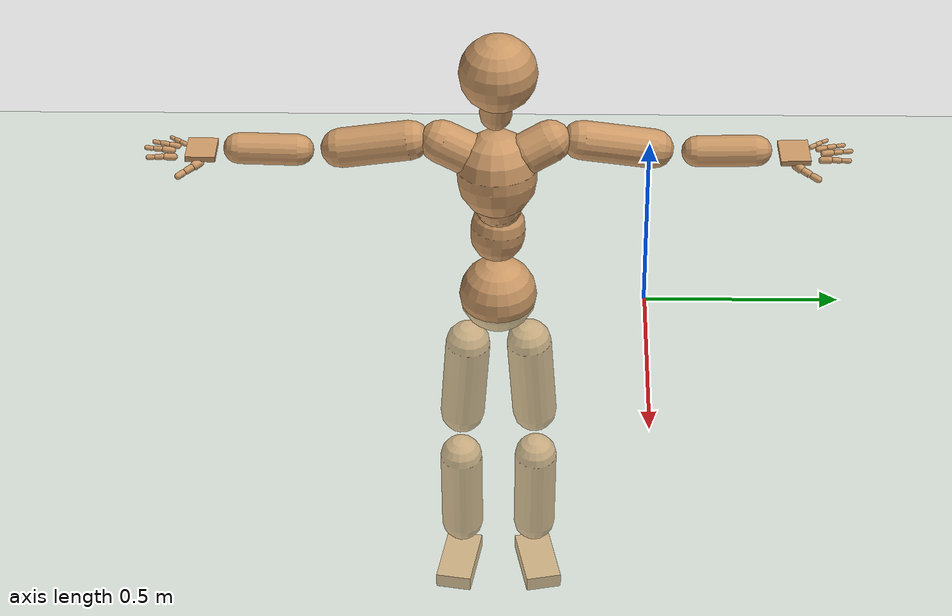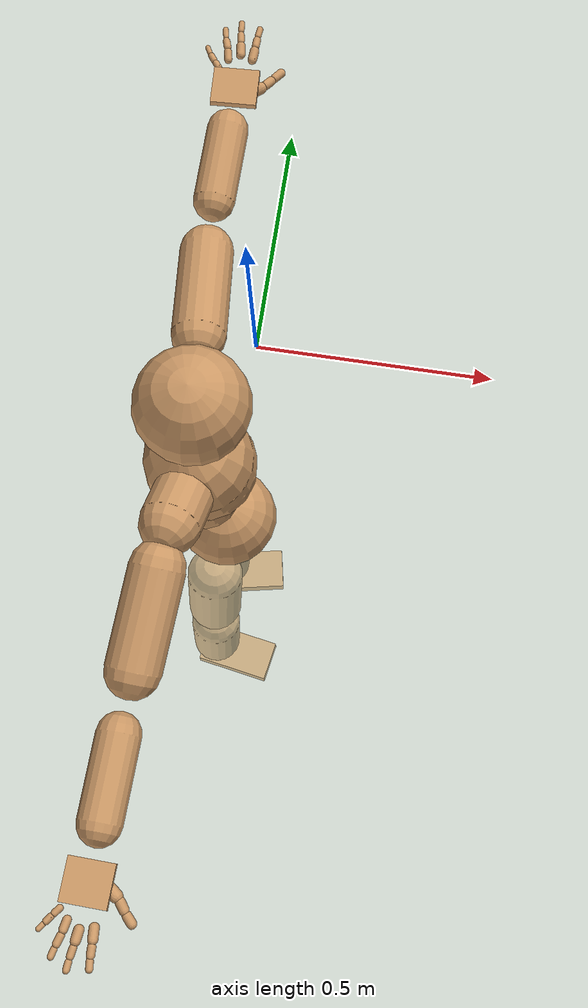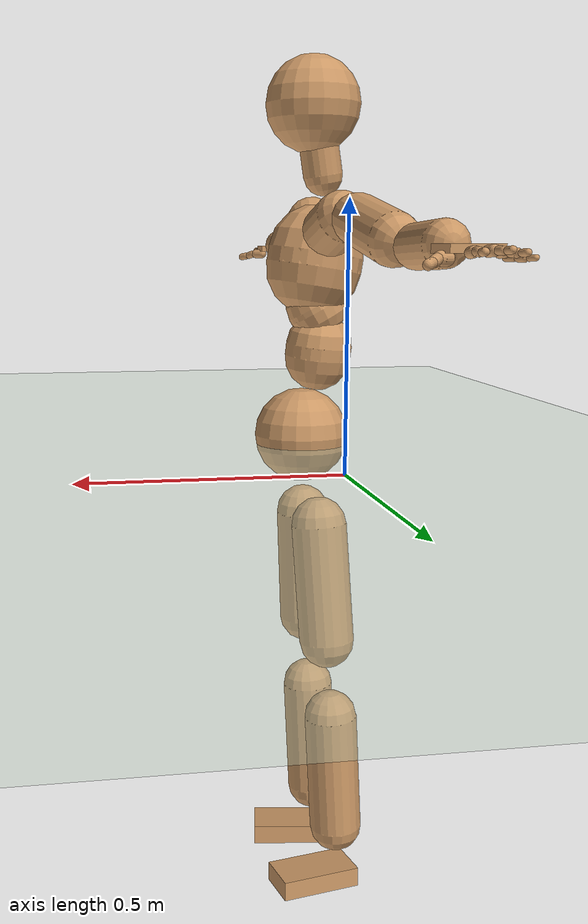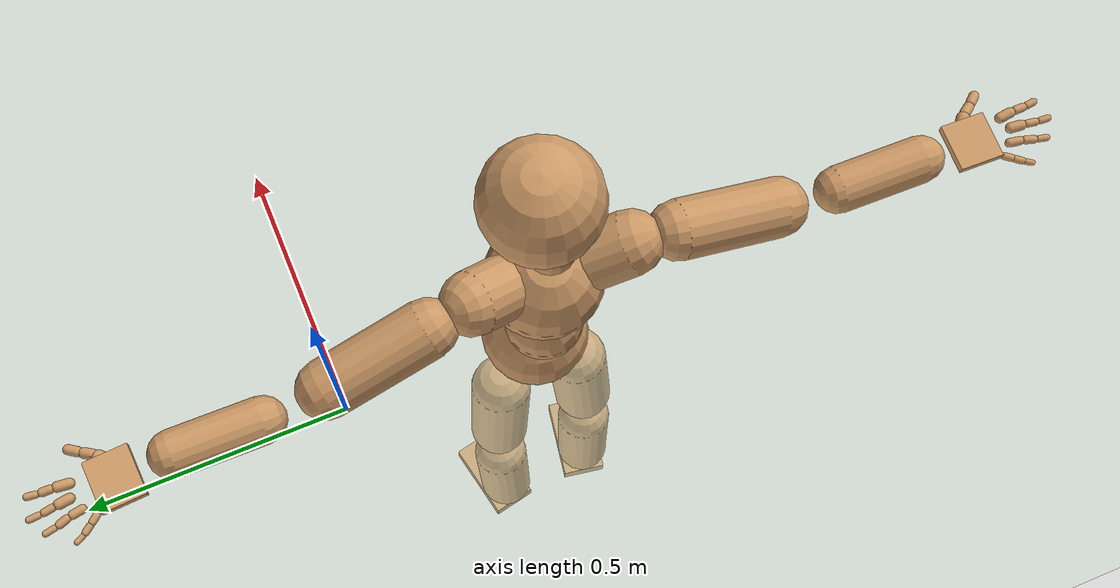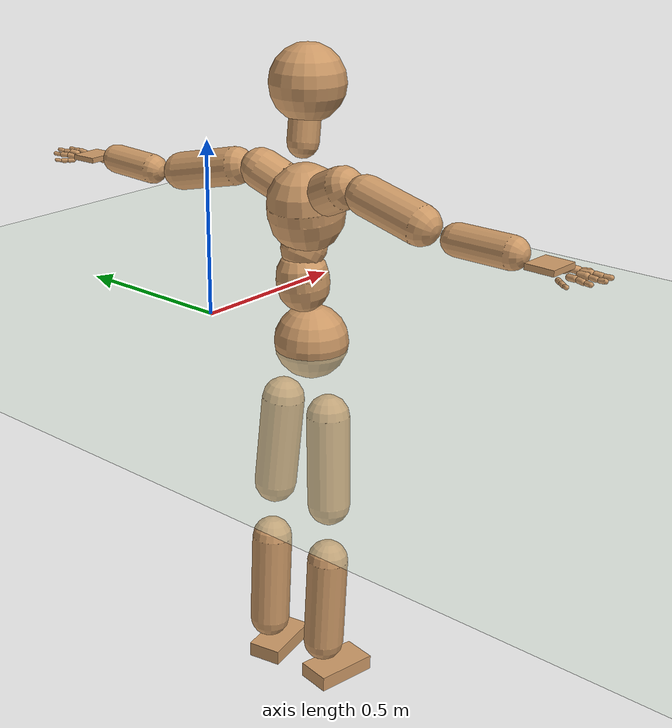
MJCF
<mujoco model="humanoid">
  <compiler coordinate="local" angle="radian"/>
  <default>
    <joint damping="0.0" armature="0.01" stiffness="0.0" limited="true"/>
    <geom conaffinity="1" condim="3" contype="7" margin="0.001" rgba="0.8 0.6 .4 1"/>
  </default>
  <asset>
    <texture type="skybox" builtin="gradient" rgb1=".4 .5 .6" rgb2="0 0 0" width="100" height="100"/>
    <texture builtin="flat" height="1278" mark="cross" markrgb="1 1 1" name="texgeom" random="0.01" rgb1="0.8 0.6 0.4" rgb2="0.8 0.6 0.4" type="cube" width="127"/>
    <texture builtin="checker" height="100" name="texplane" rgb1="0 0 0" rgb2="0.8 0.8 0.8" type="2d" width="100"/>
    <material name="MatPlane" reflectance="0.5" shininess="1" specular="1" texrepeat="60 60" texture="texplane"/>
    <material name="geom" texture="texgeom" texuniform="true"/>
  </asset>
  <worldbody>
    <light cutoff="100" diffuse="1 1 1" dir="-0 0 -1.3" directional="true" exponent="1" pos="0 0 1.3" specular=".1 .1 .1"/>
    <geom conaffinity="1" condim="3" name="floor" pos="0 0 0" rgba="0.8 0.9 0.8 1" size="100 100 .2" type="plane" material="MatPlane"/>
    <body name="Pelvis" pos="0.0004 -0.3781 0.017">
      <freejoint name="Pelvis"/>
      <geom type="sphere" contype="1" conaffinity="1" density="500" size="0.1006" pos="0.0000 0.0000 0.0000" name="Pelvis"/>
      <body name="L_Hip" pos="-0.0177 0.0754 -0.0968">
        <joint name="L_Hip_x" type="hinge" pos="0 0 0" axis="1 0 0" stiffness="800" damping="80" armature="0.02" range="-180.0000 180.0000"/>
        <joint name="L_Hip_y" type="hinge" pos="0 0 0" axis="0 1 0" stiffness="800" damping="80" armature="0.02" range="-180.0000 180.0000"/>
        <joint name="L_Hip_z" type="hinge" pos="0 0 0" axis="0 0 1" stiffness="800" damping="80" armature="0.02" range="-180.0000 180.0000"/>
        <geom type="capsule" contype="1" conaffinity="1" density="500" fromto="-0.0055 0.0051 -0.0858 -0.0220 0.0206 -0.3432" size="0.0588" name="L_Hip"/>
        <body name="L_Knee" pos="-0.0275 0.0257 -0.429">
          <joint name="L_Knee_x" type="hinge" pos="0 0 0" axis="1 0 0" stiffness="800" damping="80" armature="0.02" range="-180.0000 180.0000"/>
          <joint name="L_Knee_y" type="hinge" pos="0 0 0" axis="0 1 0" stiffness="800" damping="80" armature="0.02" range="-180.0000 180.0000"/>
          <joint name="L_Knee_z" type="hinge" pos="0 0 0" axis="0 0 1" stiffness="800" damping="80" armature="0.02" range="-180.0000 180.0000"/>
          <geom type="capsule" contype="1" conaffinity="1" density="500" fromto="-0.0052 -0.0012 -0.0879 -0.0209 -0.0046 -0.3517" size="0.0568" name="L_Knee"/>
          <body name="L_Ankle" pos="-0.0261 -0.0058 -0.4396">
            <joint name="L_Ankle_x" type="hinge" pos="0 0 0" axis="1 0 0" stiffness="800" damping="80" armature="0.02" range="-180.0000 180.0000"/>
            <joint name="L_Ankle_y" type="hinge" pos="0 0 0" axis="0 1 0" stiffness="800" damping="80" armature="0.02" range="-180.0000 180.0000"/>
            <joint name="L_Ankle_z" type="hinge" pos="0 0 0" axis="0 0 1" stiffness="800" damping="80" armature="0.02" range="-180.0000 180.0000"/>
            <geom type="box" contype="1" conaffinity="1" density="500" pos="0.0573 0.0115 -0.0243" size="0.0887 0.0479 0.0214" quat="0.9951 0.0000 0.0000 0.0989" name="L_Ankle"/>
            <body name="L_Toe" pos="0.1146 0.023 -0.0485">
              <joint name="L_Toe_x" type="hinge" pos="0 0 0" axis="1 0 0" stiffness="500" damping="50" armature="0.02" range="-180.0000 180.0000"/>
              <joint name="L_Toe_y" type="hinge" pos="0 0 0" axis="0 1 0" stiffness="500" damping="50" armature="0.02" range="-180.0000 180.0000"/>
              <joint name="L_Toe_z" type="hinge" pos="0 0 0" axis="0 0 1" stiffness="500" damping="50" armature="0.02" range="-180.0000 180.0000"/>
              <geom type="box" contype="1" conaffinity="1" density="500" pos="0.0000 0.0000 0.0238" size="0.0009 0.0023 0.001" quat="0.9944 0.0000 0.0000 0.1054" name="L_Toe"/>
            </body>
          </body>
        </body>
      </body>
      <body name="R_Hip" pos="-0.019 -0.0747 -0.1036">
        <joint name="R_Hip_x" type="hinge" pos="0 0 0" axis="1 0 0" stiffness="800" damping="80" armature="0.02" range="-180.0000 180.0000"/>
        <joint name="R_Hip_y" type="hinge" pos="0 0 0" axis="0 1 0" stiffness="800" damping="80" armature="0.02" range="-180.0000 180.0000"/>
        <joint name="R_Hip_z" type="hinge" pos="0 0 0" axis="0 0 1" stiffness="800" damping="80" armature="0.02" range="-180.0000 180.0000"/>
        <geom type="capsule" contype="1" conaffinity="1" density="500" fromto="-0.0043 -0.0059 -0.0850 -0.0171 -0.0234 -0.3398" size="0.0586" name="R_Hip"/>
        <body name="R_Knee" pos="-0.0213 -0.0293 -0.4248">
          <joint name="R_Knee_x" type="hinge" pos="0 0 0" axis="1 0 0" stiffness="800" damping="80" armature="0.02" range="-180.0000 180.0000"/>
          <joint name="R_Knee_y" type="hinge" pos="0 0 0" axis="0 1 0" stiffness="800" damping="80" armature="0.02" range="-180.0000 180.0000"/>
          <joint name="R_Knee_z" type="hinge" pos="0 0 0" axis="0 0 1" stiffness="800" damping="80" armature="0.02" range="-180.0000 180.0000"/>
          <geom type="capsule" contype="1" conaffinity="1" density="500" fromto="-0.0045 0.0002 -0.0861 -0.0179 0.0007 -0.3444" size="0.0568" name="R_Knee"/>
          <body name="R_Ankle" pos="-0.0224 0.0009 -0.4305">
            <joint name="R_Ankle_x" type="hinge" pos="0 0 0" axis="1 0 0" stiffness="800" damping="80" armature="0.02" range="-180.0000 180.0000"/>
            <joint name="R_Ankle_y" type="hinge" pos="0 0 0" axis="0 1 0" stiffness="800" damping="80" armature="0.02" range="-180.0000 180.0000"/>
            <joint name="R_Ankle_z" type="hinge" pos="0 0 0" axis="0 0 1" stiffness="800" damping="80" armature="0.02" range="-180.0000 180.0000"/>
            <geom type="box" contype="1" conaffinity="1" density="500" pos="0.0541 -0.0093 -0.0261" size="0.0887 0.0479 0.0215" quat="0.9964 0.0000 0.0000 -0.0849" name="R_Ankle"/>
            <body name="R_Toe" pos="0.1082 -0.0186 -0.0522">
              <joint name="R_Toe_x" type="hinge" pos="0 0 0" axis="1 0 0" stiffness="500" damping="50" armature="0.02" range="-180.0000 180.0000"/>
              <joint name="R_Toe_y" type="hinge" pos="0 0 0" axis="0 1 0" stiffness="500" damping="50" armature="0.02" range="-180.0000 180.0000"/>
              <joint name="R_Toe_z" type="hinge" pos="0 0 0" axis="0 0 1" stiffness="500" damping="50" armature="0.02" range="-180.0000 180.0000"/>
              <geom type="box" contype="1" conaffinity="1" density="500" pos="0.0000 0.0000 0.0257" size="0.0009 0.0023 0.001" quat="0.9972 0.0000 0.0000 -0.0745" name="R_Toe"/>
            </body>
          </body>
        </body>
      </body>
      <body name="Torso" pos="-0.0302 -0.0055 0.1131">
        <joint name="Torso_x" type="hinge" pos="0 0 0" axis="1 0 0" stiffness="1000" damping="100" armature="0.02" range="-180.0000 180.0000"/>
        <joint name="Torso_y" type="hinge" pos="0 0 0" axis="0 1 0" stiffness="1000" damping="100" armature="0.02" range="-180.0000 180.0000"/>
        <joint name="Torso_z" type="hinge" pos="0 0 0" axis="0 0 1" stiffness="1000" damping="100" armature="0.02" range="-180.0000 180.0000"/>
        <geom type="capsule" contype="1" conaffinity="1" density="500" fromto="-0.0071 0.0060 0.0790 -0.0047 0.0040 0.0527" size="0.0702" name="Torso"/>
        <body name="Spine" pos="-0.0118 0.01 0.1317">
          <joint name="Spine_x" type="hinge" pos="0 0 0" axis="1 0 0" stiffness="1000" damping="100" armature="0.02" range="-180.0000 180.0000"/>
          <joint name="Spine_y" type="hinge" pos="0 0 0" axis="0 1 0" stiffness="1000" damping="100" armature="0.02" range="-180.0000 180.0000"/>
          <joint name="Spine_z" type="hinge" pos="0 0 0" axis="0 0 1" stiffness="1000" damping="100" armature="0.02" range="-180.0000 180.0000"/>
          <geom type="capsule" contype="1" conaffinity="1" density="500" fromto="0.0165 -0.0030 0.0298 0.0110 -0.0020 0.0199" size="0.0607" name="Spine"/>
          <body name="Chest" pos="0.0274 -0.0051 0.0497">
            <joint name="Chest_x" type="hinge" pos="0 0 0" axis="1 0 0" stiffness="1000" damping="100" armature="0.02" range="-180.0000 180.0000"/>
            <joint name="Chest_y" type="hinge" pos="0 0 0" axis="0 1 0" stiffness="1000" damping="100" armature="0.02" range="-180.0000 180.0000"/>
            <joint name="Chest_z" type="hinge" pos="0 0 0" axis="0 0 1" stiffness="1000" damping="100" armature="0.02" range="-180.0000 180.0000"/>
            <geom type="capsule" contype="1" conaffinity="1" density="500" fromto="-0.0146 -0.0017 0.0906 -0.0098 -0.0011 0.0604" size="0.1013" name="Chest"/>
            <body name="Neck" pos="-0.0341 -0.0058 0.2125">
              <joint name="Neck_x" type="hinge" pos="0 0 0" axis="1 0 0" stiffness="500" damping="50" armature="0.02" range="-180.0000 180.0000"/>
              <joint name="Neck_y" type="hinge" pos="0 0 0" axis="0 1 0" stiffness="500" damping="50" armature="0.02" range="-180.0000 180.0000"/>
              <joint name="Neck_z" type="hinge" pos="0 0 0" axis="0 0 1" stiffness="500" damping="50" armature="0.02" range="-180.0000 180.0000"/>
              <geom type="capsule" contype="1" conaffinity="1" density="500" fromto="0.0060 0.0017 0.0354 0.0241 0.0069 0.1417" size="0.0411" name="Neck"/>
              <body name="Head" pos="0.0302 0.0086 0.1772">
                <joint name="Head_x" type="hinge" pos="0 0 0" axis="1 0 0" stiffness="500" damping="50" armature="0.02" range="-180.0000 180.0000"/>
                <joint name="Head_y" type="hinge" pos="0 0 0" axis="0 1 0" stiffness="500" damping="50" armature="0.02" range="-180.0000 180.0000"/>
                <joint name="Head_z" type="hinge" pos="0 0 0" axis="0 0 1" stiffness="500" damping="50" armature="0.02" range="-180.0000 180.0000"/>
                <geom type="sphere" contype="1" conaffinity="1" density="500" size="0.0986" pos="0.0000 0.0000 0.0000" name="Head"/>
              </body>
            </body>
            <body name="L_Thorax" pos="-0.0162 0.054 0.1226">
              <joint name="L_Thorax_x" type="hinge" pos="0 0 0" axis="1 0 0" stiffness="500" damping="50" armature="0.02" range="-180.0000 180.0000"/>
              <joint name="L_Thorax_y" type="hinge" pos="0 0 0" axis="0 1 0" stiffness="500" damping="50" armature="0.02" range="-180.0000 180.0000"/>
              <joint name="L_Thorax_z" type="hinge" pos="0 0 0" axis="0 0 1" stiffness="500" damping="50" armature="0.02" range="-180.0000 180.0000"/>
              <geom type="capsule" contype="1" conaffinity="1" density="500" fromto="-0.0047 0.0193 0.0093 -0.0189 0.0774 0.0371" size="0.0544" name="L_Thorax"/>
              <body name="L_Shoulder" pos="-0.0236 0.0967 0.0464">
                <joint name="L_Shoulder_x" type="hinge" pos="0 0 0" axis="1 0 0" stiffness="500" damping="50" armature="0.02" range="-180.0000 180.0000"/>
                <joint name="L_Shoulder_y" type="hinge" pos="0 0 0" axis="0 1 0" stiffness="500" damping="50" armature="0.02" range="-180.0000 180.0000"/>
                <joint name="L_Shoulder_z" type="hinge" pos="0 0 0" axis="0 0 1" stiffness="500" damping="50" armature="0.02" range="-180.0000 180.0000"/>
                <geom type="capsule" contype="1" conaffinity="1" density="500" fromto="-0.0063 0.0606 -0.0134 -0.0253 0.2422 -0.0535" size="0.0504" name="L_Shoulder"/>
                <body name="L_Elbow" pos="-0.0316 0.3028 -0.0669">
                  <joint name="L_Elbow_x" type="hinge" pos="0 0 0" axis="1 0 0" stiffness="500" damping="50" armature="0.02" range="-720.0000 720.0000"/>
                  <joint name="L_Elbow_y" type="hinge" pos="0 0 0" axis="0 1 0" stiffness="500" damping="50" armature="0.02" range="-720.0000 720.0000"/>
                  <joint name="L_Elbow_z" type="hinge" pos="0 0 0" axis="0 0 1" stiffness="500" damping="50" armature="0.02" range="-720.0000 720.0000"/>
                  <geom type="capsule" contype="1" conaffinity="1" density="500" fromto="0.0006 0.0496 0.0014 0.0022 0.1985 0.0056" size="0.0398" name="L_Elbow"/>
                  <body name="L_Wrist" pos="0.0028 0.2481 0.007">
                    <joint name="L_Wrist_x" type="hinge" pos="0 0 0" axis="1 0 0" stiffness="300" damping="30" armature="0.02" range="-180.0000 180.0000"/>
                    <joint name="L_Wrist_y" type="hinge" pos="0 0 0" axis="0 1 0" stiffness="300" damping="30" armature="0.02" range="-180.0000 180.0000"/>
                    <joint name="L_Wrist_z" type="hinge" pos="0 0 0" axis="0 0 1" stiffness="300" damping="30" armature="0.02" range="-180.0000 180.0000"/>
                    <geom type="box" contype="1" conaffinity="1" density="500" pos="-0.0023 0.0466 -0.0090" size="0.038 0.0443 0.0072" quat="0.7244 0.0000 0.0000 -0.6894" name="L_Wrist"/>
                    <body name="L_Index1" pos="0.0195 0.109 -0.0157">
                      <joint name="L_Index1_x" type="hinge" pos="0 0 0" axis="1 0 0" stiffness="100" damping="10" armature="0.02" range="-180.0000 180.0000"/>
                      <joint name="L_Index1_y" type="hinge" pos="0 0 0" axis="0 1 0" stiffness="100" damping="10" armature="0.02" range="-180.0000 180.0000"/>
                      <joint name="L_Index1_z" type="hinge" pos="0 0 0" axis="0 0 1" stiffness="100" damping="10" armature="0.02" range="-180.0000 180.0000"/>
                      <geom type="capsule" contype="1" conaffinity="1" density="500" fromto="0.0005 0.0064 0.0006 0.0020 0.0257 0.0024" size="0.0089" name="L_Index1"/>
                      <body name="L_Index2" pos="0.0025 0.0321 0.003">
                        <joint name="L_Index2_x" type="hinge" pos="0 0 0" axis="1 0 0" stiffness="100" damping="10" armature="0.02" range="-180.0000 180.0000"/>
                        <joint name="L_Index2_y" type="hinge" pos="0 0 0" axis="0 1 0" stiffness="100" damping="10" armature="0.02" range="-180.0000 180.0000"/>
                        <joint name="L_Index2_z" type="hinge" pos="0 0 0" axis="0 0 1" stiffness="100" damping="10" armature="0.02" range="-180.0000 180.0000"/>
                        <geom type="capsule" contype="1" conaffinity="1" density="500" fromto="0.0001 0.0045 -0.0003 0.0004 0.0182 -0.0011" size="0.0074" name="L_Index2"/>
                        <body name="L_Index3" pos="0.0005 0.0227 -0.0014">
                          <joint name="L_Index3_x" type="hinge" pos="0 0 0" axis="1 0 0" stiffness="100" damping="10" armature="0.02" range="-180.0000 180.0000"/>
                          <joint name="L_Index3_y" type="hinge" pos="0 0 0" axis="0 1 0" stiffness="100" damping="10" armature="0.02" range="-180.0000 180.0000"/>
                          <joint name="L_Index3_z" type="hinge" pos="0 0 0" axis="0 0 1" stiffness="100" damping="10" armature="0.02" range="-180.0000 180.0000"/>
                          <geom type="capsule" contype="1" conaffinity="1" density="500" fromto="0.0005 0.0049 0.0001 0.0020 0.0198 0.0005" size="0.0062" name="L_Index3"/>
                        </body>
                      </body>
                    </body>
                    <body name="L_Middle1" pos="-0.0031 0.1161 -0.0131">
                      <joint name="L_Middle1_x" type="hinge" pos="0 0 0" axis="1 0 0" stiffness="100" damping="10" armature="0.02" range="-180.0000 180.0000"/>
                      <joint name="L_Middle1_y" type="hinge" pos="0 0 0" axis="0 1 0" stiffness="100" damping="10" armature="0.02" range="-180.0000 180.0000"/>
                      <joint name="L_Middle1_z" type="hinge" pos="0 0 0" axis="0 0 1" stiffness="100" damping="10" armature="0.02" range="-180.0000 180.0000"/>
                      <geom type="capsule" contype="1" conaffinity="1" density="500" fromto="-0.0008 0.0060 0.0003 -0.0031 0.0241 0.0013" size="0.009" name="L_Middle1"/>
                      <body name="L_Middle2" pos="-0.0039 0.0302 0.0016">
                        <joint name="L_Middle2_x" type="hinge" pos="0 0 0" axis="1 0 0" stiffness="100" damping="10" armature="0.02" range="-180.0000 180.0000"/>
                        <joint name="L_Middle2_y" type="hinge" pos="0 0 0" axis="0 1 0" stiffness="100" damping="10" armature="0.02" range="-180.0000 180.0000"/>
                        <joint name="L_Middle2_z" type="hinge" pos="0 0 0" axis="0 0 1" stiffness="100" damping="10" armature="0.02" range="-180.0000 180.0000"/>
                        <geom type="capsule" contype="1" conaffinity="1" density="500" fromto="-0.0008 0.0047 -0.0001 -0.0031 0.0188 -0.0004" size="0.0067" name="L_Middle2"/>
                        <body name="L_Middle3" pos="-0.0038 0.0235 -0.0005">
                          <joint name="L_Middle3_x" type="hinge" pos="0 0 0" axis="1 0 0" stiffness="100" damping="10" armature="0.02" range="-180.0000 180.0000"/>
                          <joint name="L_Middle3_y" type="hinge" pos="0 0 0" axis="0 1 0" stiffness="100" damping="10" armature="0.02" range="-180.0000 180.0000"/>
                          <joint name="L_Middle3_z" type="hinge" pos="0 0 0" axis="0 0 1" stiffness="100" damping="10" armature="0.02" range="-180.0000 180.0000"/>
                          <geom type="capsule" contype="1" conaffinity="1" density="500" fromto="-0.0004 0.0051 0.0003 -0.0015 0.0204 0.0012" size="0.0059" name="L_Middle3"/>
                        </body>
                      </body>
                    </body>
                    <body name="L_Pinky1" pos="-0.0407 0.0905 -0.0216">
                      <joint name="L_Pinky1_x" type="hinge" pos="0 0 0" axis="1 0 0" stiffness="100" damping="10" armature="0.02" range="-180.0000 180.0000"/>
                      <joint name="L_Pinky1_y" type="hinge" pos="0 0 0" axis="0 1 0" stiffness="100" damping="10" armature="0.02" range="-180.0000 180.0000"/>
                      <joint name="L_Pinky1_z" type="hinge" pos="0 0 0" axis="0 0 1" stiffness="100" damping="10" armature="0.02" range="-180.0000 180.0000"/>
                      <geom type="capsule" contype="1" conaffinity="1" density="500" fromto="-0.0023 0.0030 -0.0001 -0.0094 0.0118 -0.0003" size="0.0064" name="L_Pinky1"/>
                      <body name="L_Pinky2" pos="-0.0117 0.0148 -0.0004">
                        <joint name="L_Pinky2_x" type="hinge" pos="0 0 0" axis="1 0 0" stiffness="100" damping="10" armature="0.02" range="-180.0000 180.0000"/>
                        <joint name="L_Pinky2_y" type="hinge" pos="0 0 0" axis="0 1 0" stiffness="100" damping="10" armature="0.02" range="-180.0000 180.0000"/>
                        <joint name="L_Pinky2_z" type="hinge" pos="0 0 0" axis="0 0 1" stiffness="100" damping="10" armature="0.02" range="-180.0000 180.0000"/>
                        <geom type="capsule" contype="1" conaffinity="1" density="500" fromto="-0.0023 0.0030 -0.0002 -0.0091 0.0120 -0.0007" size="0.0062" name="L_Pinky2"/>
                        <body name="L_Pinky3" pos="-0.0114 0.015 -0.0008">
                          <joint name="L_Pinky3_x" type="hinge" pos="0 0 0" axis="1 0 0" stiffness="100" damping="10" armature="0.02" range="-180.0000 180.0000"/>
                          <joint name="L_Pinky3_y" type="hinge" pos="0 0 0" axis="0 1 0" stiffness="100" damping="10" armature="0.02" range="-180.0000 180.0000"/>
                          <joint name="L_Pinky3_z" type="hinge" pos="0 0 0" axis="0 0 1" stiffness="100" damping="10" armature="0.02" range="-180.0000 180.0000"/>
                          <geom type="capsule" contype="1" conaffinity="1" density="500" fromto="-0.0019 0.0034 0.0002 -0.0075 0.0136 0.0009" size="0.0049" name="L_Pinky3"/>
                        </body>
                      </body>
                    </body>
                    <body name="L_Ring1" pos="-0.0253 0.1039 -0.0161">
                      <joint name="L_Ring1_x" type="hinge" pos="0 0 0" axis="1 0 0" stiffness="100" damping="10" armature="0.02" range="-180.0000 180.0000"/>
                      <joint name="L_Ring1_y" type="hinge" pos="0 0 0" axis="0 1 0" stiffness="100" damping="10" armature="0.02" range="-180.0000 180.0000"/>
                      <joint name="L_Ring1_z" type="hinge" pos="0 0 0" axis="0 0 1" stiffness="100" damping="10" armature="0.02" range="-180.0000 180.0000"/>
                      <geom type="capsule" contype="1" conaffinity="1" density="500" fromto="-0.0011 0.0055 0.0004 -0.0043 0.0220 0.0015" size="0.0077" name="L_Ring1"/>
                      <body name="L_Ring2" pos="-0.0054 0.0275 0.0019">
                        <joint name="L_Ring2_x" type="hinge" pos="0 0 0" axis="1 0 0" stiffness="100" damping="10" armature="0.02" range="-180.0000 180.0000"/>
                        <joint name="L_Ring2_y" type="hinge" pos="0 0 0" axis="0 1 0" stiffness="100" damping="10" armature="0.02" range="-180.0000 180.0000"/>
                        <joint name="L_Ring2_z" type="hinge" pos="0 0 0" axis="0 0 1" stiffness="100" damping="10" armature="0.02" range="-180.0000 180.0000"/>
                        <geom type="capsule" contype="1" conaffinity="1" density="500" fromto="-0.0014 0.0045 -0.0002 -0.0057 0.0180 -0.0008" size="0.0072" name="L_Ring2"/>
                        <body name="L_Ring3" pos="-0.0071 0.0225 -0.001">
                          <joint name="L_Ring3_x" type="hinge" pos="0 0 0" axis="1 0 0" stiffness="100" damping="10" armature="0.02" range="-180.0000 180.0000"/>
                          <joint name="L_Ring3_y" type="hinge" pos="0 0 0" axis="0 1 0" stiffness="100" damping="10" armature="0.02" range="-180.0000 180.0000"/>
                          <joint name="L_Ring3_z" type="hinge" pos="0 0 0" axis="0 0 1" stiffness="100" damping="10" armature="0.02" range="-180.0000 180.0000"/>
                          <geom type="capsule" contype="1" conaffinity="1" density="500" fromto="-0.0010 0.0049 0.0002 -0.0041 0.0196 0.0008" size="0.0056" name="L_Ring3"/>
                        </body>
                      </body>
                    </body>
                    <body name="L_Thumb1" pos="0.0264 0.0469 -0.0236">
                      <joint name="L_Thumb1_x" type="hinge" pos="0 0 0" axis="1 0 0" stiffness="100" damping="10" armature="0.02" range="-180.0000 180.0000"/>
                      <joint name="L_Thumb1_y" type="hinge" pos="0 0 0" axis="0 1 0" stiffness="100" damping="10" armature="0.02" range="-180.0000 180.0000"/>
                      <joint name="L_Thumb1_z" type="hinge" pos="0 0 0" axis="0 0 1" stiffness="100" damping="10" armature="0.02" range="-180.0000 180.0000"/>
                      <geom type="capsule" contype="1" conaffinity="1" density="500" fromto="0.0048 0.0036 0.0001 0.0190 0.0144 0.0003" size="0.0118" name="L_Thumb1"/>
                      <body name="L_Thumb2" pos="0.0238 0.0179 0.0004">
                        <joint name="L_Thumb2_x" type="hinge" pos="0 0 0" axis="1 0 0" stiffness="100" damping="10" armature="0.02" range="-180.0000 180.0000"/>
                        <joint name="L_Thumb2_y" type="hinge" pos="0 0 0" axis="0 1 0" stiffness="100" damping="10" armature="0.02" range="-180.0000 180.0000"/>
                        <joint name="L_Thumb2_z" type="hinge" pos="0 0 0" axis="0 0 1" stiffness="100" damping="10" armature="0.02" range="-180.0000 180.0000"/>
                        <geom type="capsule" contype="1" conaffinity="1" density="500" fromto="0.0029 0.0042 -0.0011 0.0117 0.0169 -0.0046" size="0.0092" name="L_Thumb2"/>
                        <body name="L_Thumb3" pos="0.0146 0.0211 -0.0057">
                          <joint name="L_Thumb3_x" type="hinge" pos="0 0 0" axis="1 0 0" stiffness="100" damping="10" armature="0.02" range="-180.0000 180.0000"/>
                          <joint name="L_Thumb3_y" type="hinge" pos="0 0 0" axis="0 1 0" stiffness="100" damping="10" armature="0.02" range="-180.0000 180.0000"/>
                          <joint name="L_Thumb3_z" type="hinge" pos="0 0 0" axis="0 0 1" stiffness="100" damping="10" armature="0.02" range="-180.0000 180.0000"/>
                          <geom type="capsule" contype="1" conaffinity="1" density="500" fromto="0.0033 0.0046 -0.0007 0.0133 0.0185 -0.0030" size="0.0086" name="L_Thumb3"/>
                        </body>
                      </body>
                    </body>
                  </body>
                </body>
              </body>
            </body>
            <body name="R_Thorax" pos="-0.023 -0.0567 0.1179">
              <joint name="R_Thorax_x" type="hinge" pos="0 0 0" axis="1 0 0" stiffness="500" damping="50" armature="0.02" range="-180.0000 180.0000"/>
              <joint name="R_Thorax_y" type="hinge" pos="0 0 0" axis="0 1 0" stiffness="500" damping="50" armature="0.02" range="-180.0000 180.0000"/>
              <joint name="R_Thorax_z" type="hinge" pos="0 0 0" axis="0 0 1" stiffness="500" damping="50" armature="0.02" range="-180.0000 180.0000"/>
              <geom type="capsule" contype="1" conaffinity="1" density="500" fromto="-0.0033 -0.0210 0.0096 -0.0133 -0.0838 0.0385" size="0.0555" name="R_Thorax"/>
              <body name="R_Shoulder" pos="-0.0167 -0.1048 0.0482">
                <joint name="R_Shoulder_x" type="hinge" pos="0 0 0" axis="1 0 0" stiffness="500" damping="50" armature="0.02" range="-180.0000 180.0000"/>
                <joint name="R_Shoulder_y" type="hinge" pos="0 0 0" axis="0 1 0" stiffness="500" damping="50" armature="0.02" range="-180.0000 180.0000"/>
                <joint name="R_Shoulder_z" type="hinge" pos="0 0 0" axis="0 0 1" stiffness="500" damping="50" armature="0.02" range="-180.0000 180.0000"/>
                <geom type="capsule" contype="1" conaffinity="1" density="500" fromto="-0.0048 -0.0584 -0.0121 -0.0191 -0.2337 -0.0484" size="0.0508" name="R_Shoulder"/>
                <body name="R_Elbow" pos="-0.0239 -0.2921 -0.0605">
                  <joint name="R_Elbow_x" type="hinge" pos="0 0 0" axis="1 0 0" stiffness="500" damping="50" armature="0.02" range="-720.0000 720.0000"/>
                  <joint name="R_Elbow_y" type="hinge" pos="0 0 0" axis="0 1 0" stiffness="500" damping="50" armature="0.02" range="-720.0000 720.0000"/>
                  <joint name="R_Elbow_z" type="hinge" pos="0 0 0" axis="0 0 1" stiffness="500" damping="50" armature="0.02" range="-720.0000 720.0000"/>
                  <geom type="capsule" contype="1" conaffinity="1" density="500" fromto="-0.0013 -0.0498 0.0005 -0.0054 -0.1991 0.0022" size="0.04" name="R_Elbow"/>
                  <body name="R_Wrist" pos="-0.0067 -0.2489 0.0027">
                    <joint name="R_Wrist_x" type="hinge" pos="0 0 0" axis="1 0 0" stiffness="300" damping="30" armature="0.02" range="-180.0000 180.0000"/>
                    <joint name="R_Wrist_y" type="hinge" pos="0 0 0" axis="0 1 0" stiffness="300" damping="30" armature="0.02" range="-180.0000 180.0000"/>
                    <joint name="R_Wrist_z" type="hinge" pos="0 0 0" axis="0 0 1" stiffness="300" damping="30" armature="0.02" range="-180.0000 180.0000"/>
                    <geom type="box" contype="1" conaffinity="1" density="500" pos="-0.0015 -0.0459 -0.0086" size="0.038 0.0412 0.0074" quat="0.7186 0.0000 0.0000 0.6955" name="R_Wrist"/>
                    <body name="R_Index1" pos="0.0211 -0.1075 -0.0149">
                      <joint name="R_Index1_x" type="hinge" pos="0 0 0" axis="1 0 0" stiffness="100" damping="10" armature="0.02" range="-180.0000 180.0000"/>
                      <joint name="R_Index1_y" type="hinge" pos="0 0 0" axis="0 1 0" stiffness="100" damping="10" armature="0.02" range="-180.0000 180.0000"/>
                      <joint name="R_Index1_z" type="hinge" pos="0 0 0" axis="0 0 1" stiffness="100" damping="10" armature="0.02" range="-180.0000 180.0000"/>
                      <geom type="capsule" contype="1" conaffinity="1" density="500" fromto="0.0005 -0.0064 0.0006 0.0020 -0.0257 0.0024" size="0.0089" name="R_Index1"/>
                      <body name="R_Index2" pos="0.0025 -0.0321 0.003">
                        <joint name="R_Index2_x" type="hinge" pos="0 0 0" axis="1 0 0" stiffness="100" damping="10" armature="0.02" range="-180.0000 180.0000"/>
                        <joint name="R_Index2_y" type="hinge" pos="0 0 0" axis="0 1 0" stiffness="100" damping="10" armature="0.02" range="-180.0000 180.0000"/>
                        <joint name="R_Index2_z" type="hinge" pos="0 0 0" axis="0 0 1" stiffness="100" damping="10" armature="0.02" range="-180.0000 180.0000"/>
                        <geom type="capsule" contype="1" conaffinity="1" density="500" fromto="0.0001 -0.0045 -0.0003 0.0004 -0.0182 -0.0011" size="0.0074" name="R_Index2"/>
                        <body name="R_Index3" pos="0.0004 -0.0227 -0.0014">
                          <joint name="R_Index3_x" type="hinge" pos="0 0 0" axis="1 0 0" stiffness="100" damping="10" armature="0.02" range="-180.0000 180.0000"/>
                          <joint name="R_Index3_y" type="hinge" pos="0 0 0" axis="0 1 0" stiffness="100" damping="10" armature="0.02" range="-180.0000 180.0000"/>
                          <joint name="R_Index3_z" type="hinge" pos="0 0 0" axis="0 0 1" stiffness="100" damping="10" armature="0.02" range="-180.0000 180.0000"/>
                          <geom type="capsule" contype="1" conaffinity="1" density="500" fromto="0.0005 -0.0041 0.0001 0.0020 -0.0166 0.0005" size="0.0065" name="R_Index3"/>
                        </body>
                      </body>
                    </body>
                    <body name="R_Middle1" pos="-0.0014 -0.1147 -0.0123">
                      <joint name="R_Middle1_x" type="hinge" pos="0 0 0" axis="1 0 0" stiffness="100" damping="10" armature="0.02" range="-180.0000 180.0000"/>
                      <joint name="R_Middle1_y" type="hinge" pos="0 0 0" axis="0 1 0" stiffness="100" damping="10" armature="0.02" range="-180.0000 180.0000"/>
                      <joint name="R_Middle1_z" type="hinge" pos="0 0 0" axis="0 0 1" stiffness="100" damping="10" armature="0.02" range="-180.0000 180.0000"/>
                      <geom type="capsule" contype="1" conaffinity="1" density="500" fromto="-0.0008 -0.0060 0.0003 -0.0031 -0.0241 0.0013" size="0.009" name="R_Middle1"/>
                      <body name="R_Middle2" pos="-0.0039 -0.0302 0.0016">
                        <joint name="R_Middle2_x" type="hinge" pos="0 0 0" axis="1 0 0" stiffness="100" damping="10" armature="0.02" range="-180.0000 180.0000"/>
                        <joint name="R_Middle2_y" type="hinge" pos="0 0 0" axis="0 1 0" stiffness="100" damping="10" armature="0.02" range="-180.0000 180.0000"/>
                        <joint name="R_Middle2_z" type="hinge" pos="0 0 0" axis="0 0 1" stiffness="100" damping="10" armature="0.02" range="-180.0000 180.0000"/>
                        <geom type="capsule" contype="1" conaffinity="1" density="500" fromto="-0.0008 -0.0047 -0.0001 -0.0031 -0.0188 -0.0004" size="0.0067" name="R_Middle2"/>
                        <body name="R_Middle3" pos="-0.0038 -0.0235 -0.0005">
                          <joint name="R_Middle3_x" type="hinge" pos="0 0 0" axis="1 0 0" stiffness="100" damping="10" armature="0.02" range="-180.0000 180.0000"/>
                          <joint name="R_Middle3_y" type="hinge" pos="0 0 0" axis="0 1 0" stiffness="100" damping="10" armature="0.02" range="-180.0000 180.0000"/>
                          <joint name="R_Middle3_z" type="hinge" pos="0 0 0" axis="0 0 1" stiffness="100" damping="10" armature="0.02" range="-180.0000 180.0000"/>
                          <geom type="capsule" contype="1" conaffinity="1" density="500" fromto="-0.0004 -0.0043 0.0003 -0.0015 -0.0172 0.0012" size="0.0062" name="R_Middle3"/>
                        </body>
                      </body>
                    </body>
                    <body name="R_Pinky1" pos="-0.039 -0.0891 -0.0208">
                      <joint name="R_Pinky1_x" type="hinge" pos="0 0 0" axis="1 0 0" stiffness="100" damping="10" armature="0.02" range="-180.0000 180.0000"/>
                      <joint name="R_Pinky1_y" type="hinge" pos="0 0 0" axis="0 1 0" stiffness="100" damping="10" armature="0.02" range="-180.0000 180.0000"/>
                      <joint name="R_Pinky1_z" type="hinge" pos="0 0 0" axis="0 0 1" stiffness="100" damping="10" armature="0.02" range="-180.0000 180.0000"/>
                      <geom type="capsule" contype="1" conaffinity="1" density="500" fromto="-0.0023 -0.0030 -0.0001 -0.0094 -0.0118 -0.0003" size="0.0064" name="R_Pinky1"/>
                      <body name="R_Pinky2" pos="-0.0117 -0.0148 -0.0004">
                        <joint name="R_Pinky2_x" type="hinge" pos="0 0 0" axis="1 0 0" stiffness="100" damping="10" armature="0.02" range="-180.0000 180.0000"/>
                        <joint name="R_Pinky2_y" type="hinge" pos="0 0 0" axis="0 1 0" stiffness="100" damping="10" armature="0.02" range="-180.0000 180.0000"/>
                        <joint name="R_Pinky2_z" type="hinge" pos="0 0 0" axis="0 0 1" stiffness="100" damping="10" armature="0.02" range="-180.0000 180.0000"/>
                        <geom type="capsule" contype="1" conaffinity="1" density="500" fromto="-0.0023 -0.0030 -0.0002 -0.0091 -0.0120 -0.0007" size="0.0062" name="R_Pinky2"/>
                        <body name="R_Pinky3" pos="-0.0114 -0.015 -0.0008">
                          <joint name="R_Pinky3_x" type="hinge" pos="0 0 0" axis="1 0 0" stiffness="100" damping="10" armature="0.02" range="-180.0000 180.0000"/>
                          <joint name="R_Pinky3_y" type="hinge" pos="0 0 0" axis="0 1 0" stiffness="100" damping="10" armature="0.02" range="-180.0000 180.0000"/>
                          <joint name="R_Pinky3_z" type="hinge" pos="0 0 0" axis="0 0 1" stiffness="100" damping="10" armature="0.02" range="-180.0000 180.0000"/>
                          <geom type="capsule" contype="1" conaffinity="1" density="500" fromto="-0.0019 -0.0026 0.0002 -0.0075 -0.0104 0.0009" size="0.0051" name="R_Pinky3"/>
                        </body>
                      </body>
                    </body>
                    <body name="R_Ring1" pos="-0.0237 -0.1025 -0.0154">
                      <joint name="R_Ring1_x" type="hinge" pos="0 0 0" axis="1 0 0" stiffness="100" damping="10" armature="0.02" range="-180.0000 180.0000"/>
                      <joint name="R_Ring1_y" type="hinge" pos="0 0 0" axis="0 1 0" stiffness="100" damping="10" armature="0.02" range="-180.0000 180.0000"/>
                      <joint name="R_Ring1_z" type="hinge" pos="0 0 0" axis="0 0 1" stiffness="100" damping="10" armature="0.02" range="-180.0000 180.0000"/>
                      <geom type="capsule" contype="1" conaffinity="1" density="500" fromto="-0.0011 -0.0055 0.0004 -0.0043 -0.0220 0.0015" size="0.0077" name="R_Ring1"/>
                      <body name="R_Ring2" pos="-0.0054 -0.0275 0.0019">
                        <joint name="R_Ring2_x" type="hinge" pos="0 0 0" axis="1 0 0" stiffness="100" damping="10" armature="0.02" range="-180.0000 180.0000"/>
                        <joint name="R_Ring2_y" type="hinge" pos="0 0 0" axis="0 1 0" stiffness="100" damping="10" armature="0.02" range="-180.0000 180.0000"/>
                        <joint name="R_Ring2_z" type="hinge" pos="0 0 0" axis="0 0 1" stiffness="100" damping="10" armature="0.02" range="-180.0000 180.0000"/>
                        <geom type="capsule" contype="1" conaffinity="1" density="500" fromto="-0.0014 -0.0045 -0.0002 -0.0057 -0.0180 -0.0008" size="0.0072" name="R_Ring2"/>
                        <body name="R_Ring3" pos="-0.0071 -0.0225 -0.001">
                          <joint name="R_Ring3_x" type="hinge" pos="0 0 0" axis="1 0 0" stiffness="100" damping="10" armature="0.02" range="-180.0000 180.0000"/>
                          <joint name="R_Ring3_y" type="hinge" pos="0 0 0" axis="0 1 0" stiffness="100" damping="10" armature="0.02" range="-180.0000 180.0000"/>
                          <joint name="R_Ring3_z" type="hinge" pos="0 0 0" axis="0 0 1" stiffness="100" damping="10" armature="0.02" range="-180.0000 180.0000"/>
                          <geom type="capsule" contype="1" conaffinity="1" density="500" fromto="-0.0010 -0.0041 0.0002 -0.0041 -0.0164 0.0008" size="0.0059" name="R_Ring3"/>
                        </body>
                      </body>
                    </body>
                    <body name="R_Thumb1" pos="0.028 -0.0454 -0.0228">
                      <joint name="R_Thumb1_x" type="hinge" pos="0 0 0" axis="1 0 0" stiffness="100" damping="10" armature="0.02" range="-180.0000 180.0000"/>
                      <joint name="R_Thumb1_y" type="hinge" pos="0 0 0" axis="0 1 0" stiffness="100" damping="10" armature="0.02" range="-180.0000 180.0000"/>
                      <joint name="R_Thumb1_z" type="hinge" pos="0 0 0" axis="0 0 1" stiffness="100" damping="10" armature="0.02" range="-180.0000 180.0000"/>
                      <geom type="capsule" contype="1" conaffinity="1" density="500" fromto="0.0048 -0.0036 0.0001 0.0190 -0.0144 0.0003" size="0.0118" name="R_Thumb1"/>
                      <body name="R_Thumb2" pos="0.0238 -0.0179 0.0004">
                        <joint name="R_Thumb2_x" type="hinge" pos="0 0 0" axis="1 0 0" stiffness="100" damping="10" armature="0.02" range="-180.0000 180.0000"/>
                        <joint name="R_Thumb2_y" type="hinge" pos="0 0 0" axis="0 1 0" stiffness="100" damping="10" armature="0.02" range="-180.0000 180.0000"/>
                        <joint name="R_Thumb2_z" type="hinge" pos="0 0 0" axis="0 0 1" stiffness="100" damping="10" armature="0.02" range="-180.0000 180.0000"/>
                        <geom type="capsule" contype="1" conaffinity="1" density="500" fromto="0.0029 -0.0042 -0.0011 0.0117 -0.0169 -0.0046" size="0.0092" name="R_Thumb2"/>
                        <body name="R_Thumb3" pos="0.0146 -0.0211 -0.0057">
                          <joint name="R_Thumb3_x" type="hinge" pos="0 0 0" axis="1 0 0" stiffness="100" damping="10" armature="0.02" range="-180.0000 180.0000"/>
                          <joint name="R_Thumb3_y" type="hinge" pos="0 0 0" axis="0 1 0" stiffness="100" damping="10" armature="0.02" range="-180.0000 180.0000"/>
                          <joint name="R_Thumb3_z" type="hinge" pos="0 0 0" axis="0 0 1" stiffness="100" damping="10" armature="0.02" range="-180.0000 180.0000"/>
                          <geom type="capsule" contype="1" conaffinity="1" density="500" fromto="0.0033 -0.0038 -0.0007 0.0133 -0.0153 -0.0030" size="0.0088" name="R_Thumb3"/>
                        </body>
                      </body>
                    </body>
                  </body>
                </body>
              </body>
            </body>
          </body>
        </body>
      </body>
    </body>
  </worldbody>
  <actuator>
    <motor name="L_Hip_x" joint="L_Hip_x" gear="500"/>
    <motor name="L_Hip_y" joint="L_Hip_y" gear="500"/>
    <motor name="L_Hip_z" joint="L_Hip_z" gear="500"/>
    <motor name="L_Knee_x" joint="L_Knee_x" gear="500"/>
    <motor name="L_Knee_y" joint="L_Knee_y" gear="500"/>
    <motor name="L_Knee_z" joint="L_Knee_z" gear="500"/>
    <motor name="L_Ankle_x" joint="L_Ankle_x" gear="500"/>
    <motor name="L_Ankle_y" joint="L_Ankle_y" gear="500"/>
    <motor name="L_Ankle_z" joint="L_Ankle_z" gear="500"/>
    <motor name="L_Toe_x" joint="L_Toe_x" gear="500"/>
    <motor name="L_Toe_y" joint="L_Toe_y" gear="500"/>
    <motor name="L_Toe_z" joint="L_Toe_z" gear="500"/>
    <motor name="R_Hip_x" joint="R_Hip_x" gear="500"/>
    <motor name="R_Hip_y" joint="R_Hip_y" gear="500"/>
    <motor name="R_Hip_z" joint="R_Hip_z" gear="500"/>
    <motor name="R_Knee_x" joint="R_Knee_x" gear="500"/>
    <motor name="R_Knee_y" joint="R_Knee_y" gear="500"/>
    <motor name="R_Knee_z" joint="R_Knee_z" gear="500"/>
    <motor name="R_Ankle_x" joint="R_Ankle_x" gear="500"/>
    <motor name="R_Ankle_y" joint="R_Ankle_y" gear="500"/>
    <motor name="R_Ankle_z" joint="R_Ankle_z" gear="500"/>
    <motor name="R_Toe_x" joint="R_Toe_x" gear="500"/>
    <motor name="R_Toe_y" joint="R_Toe_y" gear="500"/>
    <motor name="R_Toe_z" joint="R_Toe_z" gear="500"/>
    <motor name="Torso_x" joint="Torso_x" gear="500"/>
    <motor name="Torso_y" joint="Torso_y" gear="500"/>
    <motor name="Torso_z" joint="Torso_z" gear="500"/>
    <motor name="Spine_x" joint="Spine_x" gear="500"/>
    <motor name="Spine_y" joint="Spine_y" gear="500"/>
    <motor name="Spine_z" joint="Spine_z" gear="500"/>
    <motor name="Chest_x" joint="Chest_x" gear="500"/>
    <motor name="Chest_y" joint="Chest_y" gear="500"/>
    <motor name="Chest_z" joint="Chest_z" gear="500"/>
    <motor name="Neck_x" joint="Neck_x" gear="500"/>
    <motor name="Neck_y" joint="Neck_y" gear="500"/>
    <motor name="Neck_z" joint="Neck_z" gear="500"/>
    <motor name="Head_x" joint="Head_x" gear="500"/>
    <motor name="Head_y" joint="Head_y" gear="500"/>
    <motor name="Head_z" joint="Head_z" gear="500"/>
    <motor name="L_Thorax_x" joint="L_Thorax_x" gear="500"/>
    <motor name="L_Thorax_y" joint="L_Thorax_y" gear="500"/>
    <motor name="L_Thorax_z" joint="L_Thorax_z" gear="500"/>
    <motor name="L_Shoulder_x" joint="L_Shoulder_x" gear="500"/>
    <motor name="L_Shoulder_y" joint="L_Shoulder_y" gear="500"/>
    <motor name="L_Shoulder_z" joint="L_Shoulder_z" gear="500"/>
    <motor name="L_Elbow_x" joint="L_Elbow_x" gear="500"/>
    <motor name="L_Elbow_y" joint="L_Elbow_y" gear="500"/>
    <motor name="L_Elbow_z" joint="L_Elbow_z" gear="500"/>
    <motor name="L_Wrist_x" joint="L_Wrist_x" gear="500"/>
    <motor name="L_Wrist_y" joint="L_Wrist_y" gear="500"/>
    <motor name="L_Wrist_z" joint="L_Wrist_z" gear="500"/>
    <motor name="L_Index1_x" joint="L_Index1_x" gear="500"/>
    <motor name="L_Index1_y" joint="L_Index1_y" gear="500"/>
    <motor name="L_Index1_z" joint="L_Index1_z" gear="500"/>
    <motor name="L_Index2_x" joint="L_Index2_x" gear="500"/>
    <motor name="L_Index2_y" joint="L_Index2_y" gear="500"/>
    <motor name="L_Index2_z" joint="L_Index2_z" gear="500"/>
    <motor name="L_Index3_x" joint="L_Index3_x" gear="500"/>
    <motor name="L_Index3_y" joint="L_Index3_y" gear="500"/>
    <motor name="L_Index3_z" joint="L_Index3_z" gear="500"/>
    <motor name="L_Middle1_x" joint="L_Middle1_x" gear="500"/>
    <motor name="L_Middle1_y" joint="L_Middle1_y" gear="500"/>
    <motor name="L_Middle1_z" joint="L_Middle1_z" gear="500"/>
    <motor name="L_Middle2_x" joint="L_Middle2_x" gear="500"/>
    <motor name="L_Middle2_y" joint="L_Middle2_y" gear="500"/>
    <motor name="L_Middle2_z" joint="L_Middle2_z" gear="500"/>
    <motor name="L_Middle3_x" joint="L_Middle3_x" gear="500"/>
    <motor name="L_Middle3_y" joint="L_Middle3_y" gear="500"/>
    <motor name="L_Middle3_z" joint="L_Middle3_z" gear="500"/>
    <motor name="L_Pinky1_x" joint="L_Pinky1_x" gear="500"/>
    <motor name="L_Pinky1_y" joint="L_Pinky1_y" gear="500"/>
    <motor name="L_Pinky1_z" joint="L_Pinky1_z" gear="500"/>
    <motor name="L_Pinky2_x" joint="L_Pinky2_x" gear="500"/>
    <motor name="L_Pinky2_y" joint="L_Pinky2_y" gear="500"/>
    <motor name="L_Pinky2_z" joint="L_Pinky2_z" gear="500"/>
    <motor name="L_Pinky3_x" joint="L_Pinky3_x" gear="500"/>
    <motor name="L_Pinky3_y" joint="L_Pinky3_y" gear="500"/>
    <motor name="L_Pinky3_z" joint="L_Pinky3_z" gear="500"/>
    <motor name="L_Ring1_x" joint="L_Ring1_x" gear="500"/>
    <motor name="L_Ring1_y" joint="L_Ring1_y" gear="500"/>
    <motor name="L_Ring1_z" joint="L_Ring1_z" gear="500"/>
    <motor name="L_Ring2_x" joint="L_Ring2_x" gear="500"/>
    <motor name="L_Ring2_y" joint="L_Ring2_y" gear="500"/>
    <motor name="L_Ring2_z" joint="L_Ring2_z" gear="500"/>
    <motor name="L_Ring3_x" joint="L_Ring3_x" gear="500"/>
    <motor name="L_Ring3_y" joint="L_Ring3_y" gear="500"/>
    <motor name="L_Ring3_z" joint="L_Ring3_z" gear="500"/>
    <motor name="L_Thumb1_x" joint="L_Thumb1_x" gear="500"/>
    <motor name="L_Thumb1_y" joint="L_Thumb1_y" gear="500"/>
    <motor name="L_Thumb1_z" joint="L_Thumb1_z" gear="500"/>
    <motor name="L_Thumb2_x" joint="L_Thumb2_x" gear="500"/>
    <motor name="L_Thumb2_y" joint="L_Thumb2_y" gear="500"/>
    <motor name="L_Thumb2_z" joint="L_Thumb2_z" gear="500"/>
    <motor name="L_Thumb3_x" joint="L_Thumb3_x" gear="500"/>
    <motor name="L_Thumb3_y" joint="L_Thumb3_y" gear="500"/>
    <motor name="L_Thumb3_z" joint="L_Thumb3_z" gear="500"/>
    <motor name="R_Thorax_x" joint="R_Thorax_x" gear="500"/>
    <motor name="R_Thorax_y" joint="R_Thorax_y" gear="500"/>
    <motor name="R_Thorax_z" joint="R_Thorax_z" gear="500"/>
    <motor name="R_Shoulder_x" joint="R_Shoulder_x" gear="500"/>
    <motor name="R_Shoulder_y" joint="R_Shoulder_y" gear="500"/>
    <motor name="R_Shoulder_z" joint="R_Shoulder_z" gear="500"/>
    <motor name="R_Elbow_x" joint="R_Elbow_x" gear="500"/>
    <motor name="R_Elbow_y" joint="R_Elbow_y" gear="500"/>
    <motor name="R_Elbow_z" joint="R_Elbow_z" gear="500"/>
    <motor name="R_Wrist_x" joint="R_Wrist_x" gear="500"/>
    <motor name="R_Wrist_y" joint="R_Wrist_y" gear="500"/>
    <motor name="R_Wrist_z" joint="R_Wrist_z" gear="500"/>
    <motor name="R_Index1_x" joint="R_Index1_x" gear="500"/>
    <motor name="R_Index1_y" joint="R_Index1_y" gear="500"/>
    <motor name="R_Index1_z" joint="R_Index1_z" gear="500"/>
    <motor name="R_Index2_x" joint="R_Index2_x" gear="500"/>
    <motor name="R_Index2_y" joint="R_Index2_y" gear="500"/>
    <motor name="R_Index2_z" joint="R_Index2_z" gear="500"/>
    <motor name="R_Index3_x" joint="R_Index3_x" gear="500"/>
    <motor name="R_Index3_y" joint="R_Index3_y" gear="500"/>
    <motor name="R_Index3_z" joint="R_Index3_z" gear="500"/>
    <motor name="R_Middle1_x" joint="R_Middle1_x" gear="500"/>
    <motor name="R_Middle1_y" joint="R_Middle1_y" gear="500"/>
    <motor name="R_Middle1_z" joint="R_Middle1_z" gear="500"/>
    <motor name="R_Middle2_x" joint="R_Middle2_x" gear="500"/>
    <motor name="R_Middle2_y" joint="R_Middle2_y" gear="500"/>
    <motor name="R_Middle2_z" joint="R_Middle2_z" gear="500"/>
    <motor name="R_Middle3_x" joint="R_Middle3_x" gear="500"/>
    <motor name="R_Middle3_y" joint="R_Middle3_y" gear="500"/>
    <motor name="R_Middle3_z" joint="R_Middle3_z" gear="500"/>
    <motor name="R_Pinky1_x" joint="R_Pinky1_x" gear="500"/>
    <motor name="R_Pinky1_y" joint="R_Pinky1_y" gear="500"/>
    <motor name="R_Pinky1_z" joint="R_Pinky1_z" gear="500"/>
    <motor name="R_Pinky2_x" joint="R_Pinky2_x" gear="500"/>
    <motor name="R_Pinky2_y" joint="R_Pinky2_y" gear="500"/>
    <motor name="R_Pinky2_z" joint="R_Pinky2_z" gear="500"/>
    <motor name="R_Pinky3_x" joint="R_Pinky3_x" gear="500"/>
    <motor name="R_Pinky3_y" joint="R_Pinky3_y" gear="500"/>
    <motor name="R_Pinky3_z" joint="R_Pinky3_z" gear="500"/>
    <motor name="R_Ring1_x" joint="R_Ring1_x" gear="500"/>
    <motor name="R_Ring1_y" joint="R_Ring1_y" gear="500"/>
    <motor name="R_Ring1_z" joint="R_Ring1_z" gear="500"/>
    <motor name="R_Ring2_x" joint="R_Ring2_x" gear="500"/>
    <motor name="R_Ring2_y" joint="R_Ring2_y" gear="500"/>
    <motor name="R_Ring2_z" joint="R_Ring2_z" gear="500"/>
    <motor name="R_Ring3_x" joint="R_Ring3_x" gear="500"/>
    <motor name="R_Ring3_y" joint="R_Ring3_y" gear="500"/>
    <motor name="R_Ring3_z" joint="R_Ring3_z" gear="500"/>
    <motor name="R_Thumb1_x" joint="R_Thumb1_x" gear="500"/>
    <motor name="R_Thumb1_y" joint="R_Thumb1_y" gear="500"/>
    <motor name="R_Thumb1_z" joint="R_Thumb1_z" gear="500"/>
    <motor name="R_Thumb2_x" joint="R_Thumb2_x" gear="500"/>
    <motor name="R_Thumb2_y" joint="R_Thumb2_y" gear="500"/>
    <motor name="R_Thumb2_z" joint="R_Thumb2_z" gear="500"/>
    <motor name="R_Thumb3_x" joint="R_Thumb3_x" gear="500"/>
    <motor name="R_Thumb3_y" joint="R_Thumb3_y" gear="500"/>
    <motor name="R_Thumb3_z" joint="R_Thumb3_z" gear="500"/>
  </actuator>
  <contact>
    <exclude body1="Torso" body2="Chest"/>
    <exclude body1="Head" body2="Chest"/>
    <exclude body1="R_Knee" body2="R_Toe"/>
    <exclude body1="R_Knee" body2="L_Ankle"/>
    <exclude body1="R_Knee" body2="L_Toe"/>
    <exclude body1="L_Knee" body2="L_Toe"/>
    <exclude body1="L_Knee" body2="R_Ankle"/>
    <exclude body1="L_Knee" body2="R_Toe"/>
    <exclude body1="L_Shoulder" body2="Chest"/>
    <exclude body1="R_Shoulder" body2="Chest"/>
  </contact>
  <sensor/>
  <size njmax="700" nconmax="700"/>
</mujoco>
